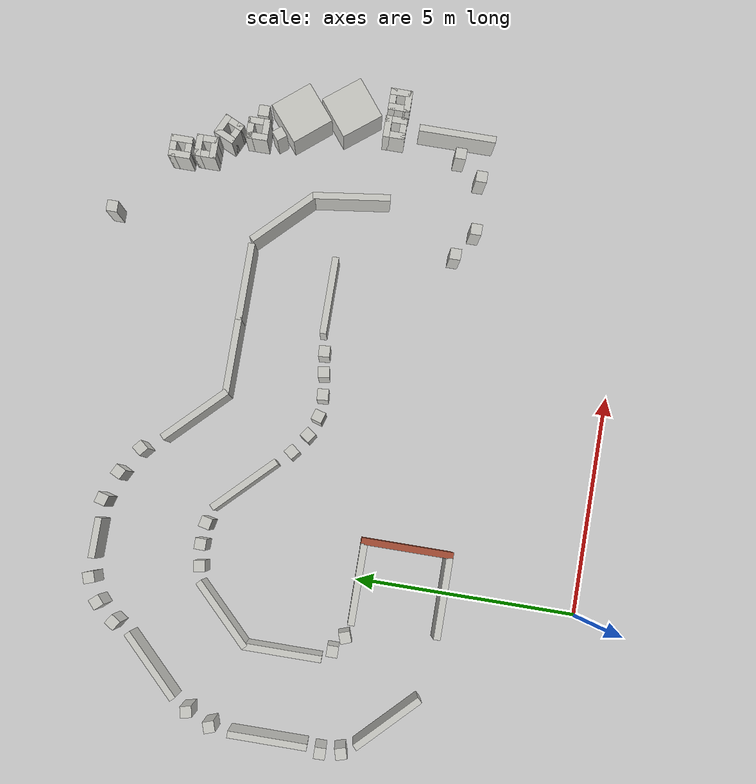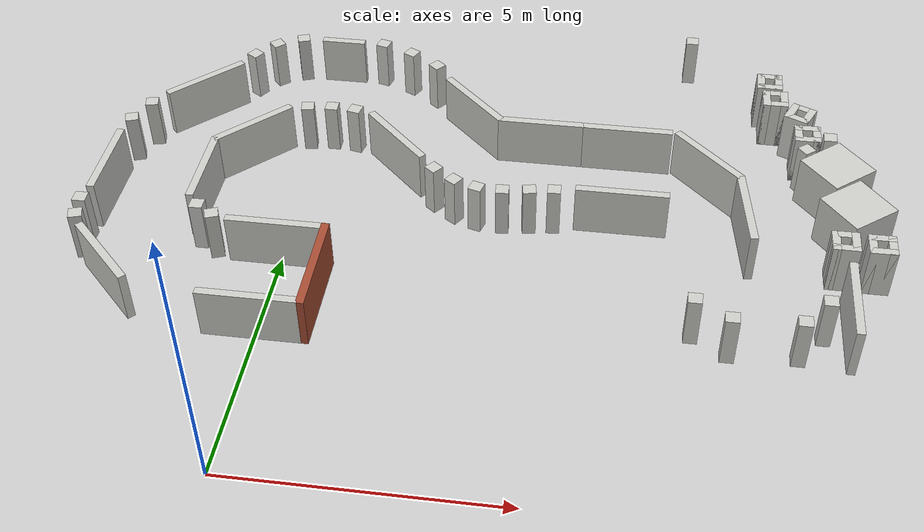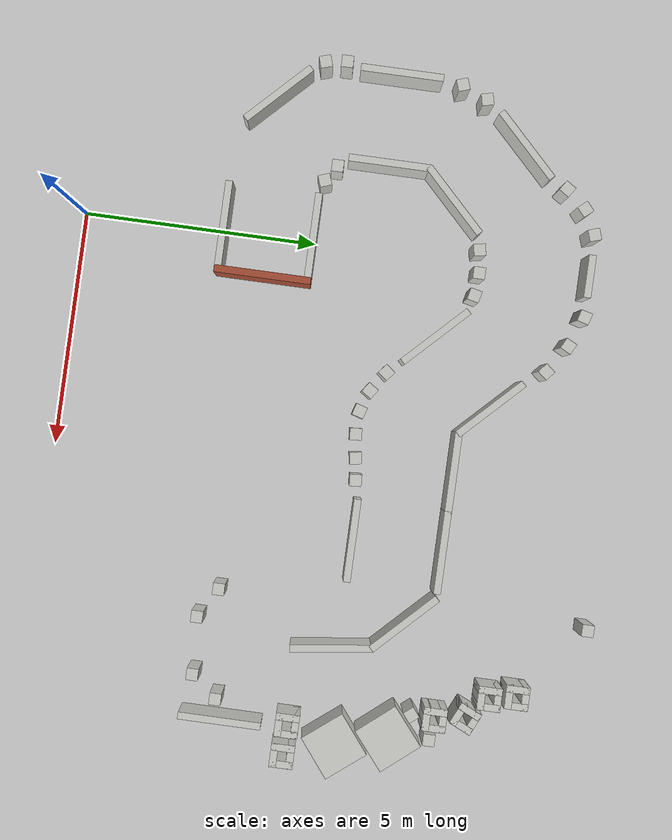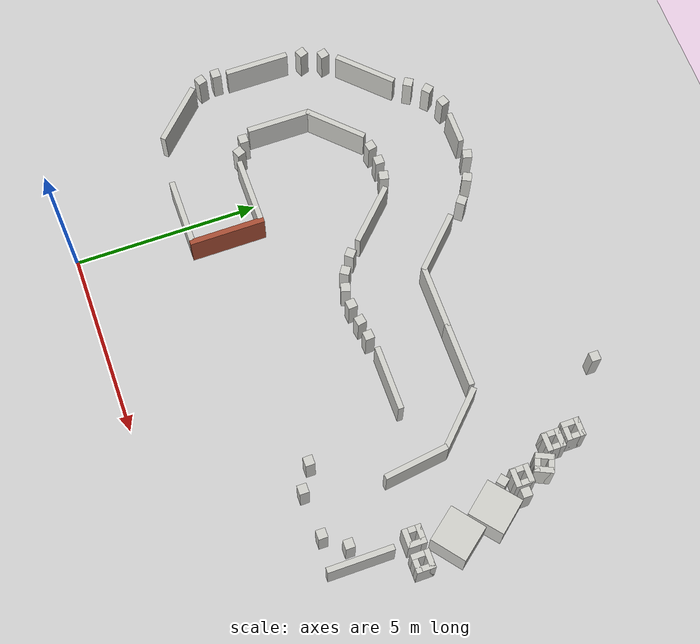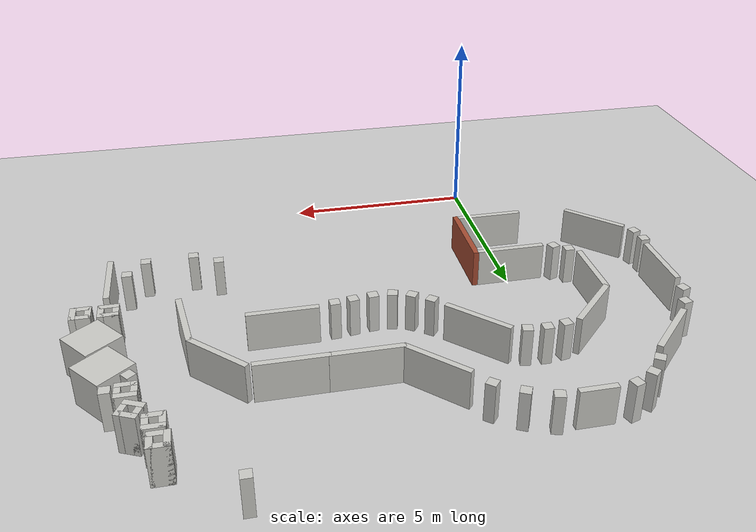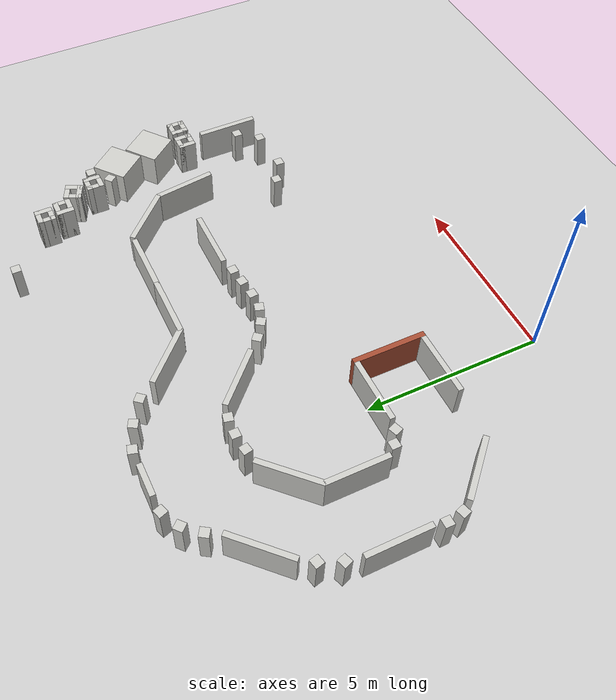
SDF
<sdf version="1.6">
 <world name="default">
  <model name="ground_plane">
   <static>1</static>
   <link name="link">
    <collision name="collision">
     <geometry><plane><normal>0 0 1</normal><size>100 100</size></plane></geometry>
     <surface><friction><ode><mu>100</mu><mu2>50</mu2></ode></friction></surface>
    </collision>
    <visual name="visual">
     <cast_shadows>0</cast_shadows>
     <geometry><plane><normal>0 0 1</normal><size>100 100</size></plane></geometry>
     <material>
      <script><uri>file://media/materials/scripts/concrete.material</uri><name>Concrete/1</name></script>
     </material>
    </visual>
   </link>
  </model>
  <model name="track_straight_0">
   <static>1</static>
   <pose>6.1613 7.57532 0 0 -0 1.5708</pose>
   <link name="Wall_1">
    <collision name="Wall_1_Collision">
     <geometry><box><size>1.75 0.15 1</size></box></geometry>
     <pose>0 0 0.5 0 -0 0</pose>
    </collision>
    <visual name="Wall_1_Visual">
     <pose>0 0 0.5 0 -0 0</pose>
     <geometry><box><size>1.75 0.15 1</size></box></geometry>
     <material>
      <script><uri>file://media/materials/scripts/gazebo.material</uri><name>Gazebo/CeilingTiled</name></script>
      <ambient>1 0.764706 0.305882 1</ambient>
     </material>
    </visual>
    <pose>-0.955 0.002 0 0 0 -1.5708</pose>
   </link>
   <link name="Wall_2">
    <collision name="Wall_2_Collision">
     <geometry><box><size>1.75 0.15 1</size></box></geometry>
     <pose>0 0 0.5 0 -0 0</pose>
    </collision>
    <visual name="Wall_2_Visual">
     <pose>0 0 0.5 0 -0 0</pose>
     <geometry><box><size>1.75 0.15 1</size></box></geometry>
     <material>
      <script><uri>file://media/materials/scripts/gazebo.material</uri><name>Gazebo/CeilingTiled</name></script>
      <ambient>1 0.764706 0.305882 1</ambient>
     </material>
    </visual>
    <pose>0.955 0.002 0 0 0 -1.5708</pose>
   </link>
  </model>
  <model name="track_straight_0_clone_0">
   <static>1</static>
   <pose>-1.86828 8.45595 0 0 -0 2.3562</pose>
   <link name="Wall_1">
    <collision name="Wall_1_Collision">
     <geometry><box><size>1.75 0.15 1</size></box></geometry>
     <pose>0 0 0.5 0 -0 0</pose>
    </collision>
    <visual name="Wall_1_Visual">
     <pose>0 0 0.5 0 -0 0</pose>
     <geometry><box><size>1.75 0.15 1</size></box></geometry>
     <material>
      <script><uri>file://media/materials/scripts/gazebo.material</uri><name>Gazebo/CeilingTiled</name></script>
      <ambient>1 0.764706 0.305882 1</ambient>
     </material>
    </visual>
    <pose>-0.955 0.002 0 0 0 -1.5708</pose>
   </link>
   <link name="Wall_2">
    <collision name="Wall_2_Collision">
     <geometry><box><size>1.75 0.15 1</size></box></geometry>
     <pose>0 0 0.5 0 -0 0</pose>
    </collision>
    <visual name="Wall_2_Visual">
     <pose>0 0 0.5 0 -0 0</pose>
     <geometry><box><size>1.75 0.15 1</size></box></geometry>
     <material>
      <script><uri>file://media/materials/scripts/gazebo.material</uri><name>Gazebo/CeilingTiled</name></script>
      <ambient>1 0.764706 0.305882 1</ambient>
     </material>
    </visual>
    <pose>0.955 0.002 0 0 0 -1.5708</pose>
   </link>
  </model>
  <model name="track_straight_0_clone_1">
   <static>1</static>
   <pose>-2.74466 6.33811 0 0 -0 0</pose>
   <link name="Wall_1">
    <collision name="Wall_1_Collision">
     <geometry><box><size>1.75 0.15 1</size></box></geometry>
     <pose>0 0 0.5 0 -0 0</pose>
    </collision>
    <visual name="Wall_1_Visual">
     <pose>0 0 0.5 0 -0 0</pose>
     <geometry><box><size>1.75 0.15 1</size></box></geometry>
     <material>
      <script><uri>file://media/materials/scripts/gazebo.material</uri><name>Gazebo/CeilingTiled</name></script>
      <ambient>1 0.764706 0.305882 1</ambient>
     </material>
    </visual>
    <pose>-0.955 0.002 0 0 0 -1.5708</pose>
   </link>
   <link name="Wall_2">
    <collision name="Wall_2_Collision">
     <geometry><box><size>1.75 0.15 1</size></box></geometry>
     <pose>0 0 0.5 0 -0 0</pose>
    </collision>
    <visual name="Wall_2_Visual">
     <pose>0 0 0.5 0 -0 0</pose>
     <geometry><box><size>1.75 0.15 1</size></box></geometry>
     <material>
      <script><uri>file://media/materials/scripts/gazebo.material</uri><name>Gazebo/CeilingTiled</name></script>
      <ambient>1 0.764706 0.305882 1</ambient>
     </material>
    </visual>
    <pose>0.955 0.002 0 0 0 -1.5708</pose>
   </link>
  </model>
  <model name="track_straight_0_clone_2">
   <static>1</static>
   <pose>2.36127 8.45219 0 0 -0 0.785402</pose>
   <link name="Wall_1">
    <collision name="Wall_1_Collision">
     <geometry><box><size>1.75 0.15 1</size></box></geometry>
     <pose>0 0 0.5 0 -0 0</pose>
    </collision>
    <visual name="Wall_1_Visual">
     <pose>0 0 0.5 0 -0 0</pose>
     <geometry><box><size>1.75 0.15 1</size></box></geometry>
     <material>
      <script><uri>file://media/materials/scripts/gazebo.material</uri><name>Gazebo/CeilingTiled</name></script>
      <ambient>1 0.764706 0.305882 1</ambient>
     </material>
    </visual>
    <pose>-0.955 0.002 0 0 0 -1.5708</pose>
   </link>
   <link name="Wall_2">
    <collision name="Wall_2_Collision">
     <geometry><box><size>1.75 0.15 1</size></box></geometry>
     <pose>0 0 0.5 0 -0 0</pose>
    </collision>
    <visual name="Wall_2_Visual">
     <pose>0 0 0.5 0 -0 0</pose>
     <geometry><box><size>1.75 0.15 1</size></box></geometry>
     <material>
      <script><uri>file://media/materials/scripts/gazebo.material</uri><name>Gazebo/CeilingTiled</name></script>
      <ambient>1 0.764706 0.305882 1</ambient>
     </material>
    </visual>
    <pose>0.955 0.002 0 0 0 -1.5708</pose>
   </link>
  </model>
  <model name="obstacle_wall_short_9">
   <static>1</static>
   <pose>0 10.81 0 0 -0 0</pose>
   <link name="Wall">
    <collision name="Wall_Collision">
     <geometry><box><size>0.9 0.15 1</size></box></geometry>
     <pose>0 0 0.5 0 -0 0</pose>
    </collision>
    <visual name="Wall_Visual">
     <pose>0 0 0.5 0 -0 0</pose>
     <geometry><box><size>0.9 0.15 1</size></box></geometry>
     <material>
      <script><uri>file://media/materials/scripts/gazebo.material</uri><name>Gazebo/CeilingTiled</name></script>
      <ambient>1 0.764706 0.305882 1</ambient>
     </material>
    </visual>
   </link>
  </model>
  <model name="obstacle_squarepillar_small">
   <static>1</static>
   <pose>2.10974 10.1788 0 0 -0 0.872076</pose>
   <link name="Pillar">
    <collision name="Pillar_Collision">
     <geometry><box><size>0.25 0.25 1</size></box></geometry>
     <pose>0 0 0.5 0 -0 0</pose>
    </collision>
    <visual name="Pillar_Visual">
     <pose>0 0 0.5 0 -0 0</pose>
     <geometry><box><size>0.25 0.25 1</size></box></geometry>
     <material>
      <script><uri>file://media/materials/scripts/gazebo.material</uri><name>Gazebo/CeilingTiled</name></script>
      <ambient>1 0.764706 0.305882 1</ambient>
     </material>
    </visual>
   </link>
  </model>
  <model name="obstacle_squarepillar_small_clone">
   <static>1</static>
   <pose>1.5116 10.5659 0 0 0 -0.470925</pose>
   <link name="Pillar">
    <collision name="Pillar_Collision">
     <geometry><box><size>0.25 0.25 1</size></box></geometry>
     <pose>0 0 0.5 0 -0 0</pose>
    </collision>
    <visual name="Pillar_Visual">
     <pose>0 0 0.5 0 -0 0</pose>
     <geometry><box><size>0.25 0.25 1</size></box></geometry>
     <material>
      <script><uri>file://media/materials/scripts/gazebo.material</uri><name>Gazebo/CeilingTiled</name></script>
      <ambient>1 0.764706 0.305882 1</ambient>
     </material>
    </visual>
   </link>
  </model>
  <model name="obstacle_squarepillar_small_clone_0">
   <static>1</static>
   <pose>0.86381 10.8205 0 0 0 -0.269082</pose>
   <link name="Pillar">
    <collision name="Pillar_Collision">
     <geometry><box><size>0.25 0.25 1</size></box></geometry>
     <pose>0 0 0.5 0 -0 0</pose>
    </collision>
    <visual name="Pillar_Visual">
     <pose>0 0 0.5 0 -0 0</pose>
     <geometry><box><size>0.25 0.25 1</size></box></geometry>
     <material>
      <script><uri>file://media/materials/scripts/gazebo.material</uri><name>Gazebo/CeilingTiled</name></script>
      <ambient>1 0.764706 0.305882 1</ambient>
     </material>
    </visual>
   </link>
  </model>
  <model name="obstacle_squarepillar_small_clone_1">
   <static>1</static>
   <pose>-1.74834 10.1009 0 0 0 -0.568659</pose>
   <link name="Pillar">
    <collision name="Pillar_Collision">
     <geometry><box><size>0.25 0.25 1</size></box></geometry>
     <pose>0 0 0.5 0 -0 0</pose>
    </collision>
    <visual name="Pillar_Visual">
     <pose>0 0 0.5 0 -0 0</pose>
     <geometry><box><size>0.25 0.25 1</size></box></geometry>
     <material>
      <script><uri>file://media/materials/scripts/gazebo.material</uri><name>Gazebo/CeilingTiled</name></script>
      <ambient>1 0.764706 0.305882 1</ambient>
     </material>
    </visual>
   </link>
  </model>
  <model name="obstacle_squarepillar_small_clone_2">
   <static>1</static>
   <pose>-1.37986 10.5313 0 0 -0 0.724923</pose>
   <link name="Pillar">
    <collision name="Pillar_Collision">
     <geometry><box><size>0.25 0.25 1</size></box></geometry>
     <pose>0 0 0.5 0 -0 0</pose>
    </collision>
    <visual name="Pillar_Visual">
     <pose>0 0 0.5 0 -0 0</pose>
     <geometry><box><size>0.25 0.25 1</size></box></geometry>
     <material>
      <script><uri>file://media/materials/scripts/gazebo.material</uri><name>Gazebo/CeilingTiled</name></script>
      <ambient>1 0.764706 0.305882 1</ambient>
     </material>
    </visual>
   </link>
  </model>
  <model name="obstacle_squarepillar_small_clone_3">
   <static>1</static>
   <pose>-0.873681 10.7903 0 0 -0 0.325172</pose>
   <link name="Pillar">
    <collision name="Pillar_Collision">
     <geometry><box><size>0.25 0.25 1</size></box></geometry>
     <pose>0 0 0.5 0 -0 0</pose>
    </collision>
    <visual name="Pillar_Visual">
     <pose>0 0 0.5 0 -0 0</pose>
     <geometry><box><size>0.25 0.25 1</size></box></geometry>
     <material>
      <script><uri>file://media/materials/scripts/gazebo.material</uri><name>Gazebo/CeilingTiled</name></script>
      <ambient>1 0.764706 0.305882 1</ambient>
     </material>
    </visual>
   </link>
  </model>
  <model name="track_end_0">
   <static>1</static>
   <pose>1e-06 4 0 0 0 -1.57079</pose>
   <link name="Wall_1">
    <collision name="Wall_1_Collision">
     <geometry><box><size>1.8 0.15 1</size></box></geometry>
     <pose>0 0 0.5 0 -0 0</pose>
    </collision>
    <visual name="Wall_1_Visual">
     <pose>0 0 0.5 0 -0 0</pose>
     <geometry><box><size>1.8 0.15 1</size></box></geometry>
     <material>
      <script><uri>file://media/materials/scripts/gazebo.material</uri><name>Gazebo/CeilingTiled</name></script>
      <ambient>1 0.764706 0.305882 1</ambient>
     </material>
    </visual>
    <pose>-0.95 -0.065 0 0 0 -1.5708</pose>
   </link>
   <link name="Wall_2">
    <collision name="Wall_2_Collision">
     <geometry><box><size>1.8 0.15 1</size></box></geometry>
     <pose>0 0 0.5 0 -0 0</pose>
    </collision>
    <visual name="Wall_2_Visual">
     <pose>0 0 0.5 0 -0 0</pose>
     <geometry><box><size>1.8 0.15 1</size></box></geometry>
     <material>
      <script><uri>file://media/materials/scripts/gazebo.material</uri><name>Gazebo/CeilingTiled</name></script>
      <ambient>1 0.764706 0.305882 1</ambient>
     </material>
    </visual>
    <pose>0.95 -0.065 0 0 0 -1.5708</pose>
   </link>
   <link name="Wall_3">
    <collision name="Wall_3_Collision">
     <geometry><box><size>2.05 0.15 1.5</size></box></geometry>
     <pose>0 0 0.75 0 -0 0</pose>
    </collision>
    <visual name="Wall_3_Visual">
     <pose>0 0 0.5 0 -0 0</pose>
     <geometry><box><size>2.05 0.15 1</size></box></geometry>
     <material>
      <script><uri>file://media/materials/scripts/gazebo.material</uri><name>Gazebo/Bricks</name></script>
      <ambient>0.996078 0.47451 0.0196078 1</ambient>
     </material>
    </visual>
    <pose>0 0.89 0 0 -0 0</pose>
   </link>
  </model>
  <model name="obstacle_squarepillar_small_0">
   <static>1</static>
   <pose>0.721248 8.46998 0 0 0 -0.217104</pose>
   <link name="Pillar">
    <collision name="Pillar_Collision">
     <geometry><box><size>0.25 0.25 1</size></box></geometry>
     <pose>0 0 0.5 0 -0 0</pose>
    </collision>
    <visual name="Pillar_Visual">
     <pose>0 0 0.5 0 -0 0</pose>
     <geometry><box><size>0.25 0.25 1</size></box></geometry>
     <material>
      <script><uri>file://media/materials/scripts/gazebo.material</uri><name>Gazebo/CeilingTiled</name></script>
      <ambient>1 0.764706 0.305882 1</ambient>
     </material>
    </visual>
   </link>
  </model>
  <model name="obstacle_squarepillar_small_0_clone">
   <static>1</static>
   <pose>0.243136 8.5027 0 0 -0 0</pose>
   <link name="Pillar">
    <collision name="Pillar_Collision">
     <geometry><box><size>0.25 0.25 1</size></box></geometry>
     <pose>0 0 0.5 0 -0 0</pose>
    </collision>
    <visual name="Pillar_Visual">
     <pose>0 0 0.5 0 -0 0</pose>
     <geometry><box><size>0.25 0.25 1</size></box></geometry>
     <material>
      <script><uri>file://media/materials/scripts/gazebo.material</uri><name>Gazebo/CeilingTiled</name></script>
      <ambient>1 0.764706 0.305882 1</ambient>
     </material>
    </visual>
   </link>
  </model>
  <model name="obstacle_squarepillar_small_0_clone_0">
   <static>1</static>
   <pose>-0.239063 8.44456 0 0 -0 0.176148</pose>
   <link name="Pillar">
    <collision name="Pillar_Collision">
     <geometry><box><size>0.25 0.25 1</size></box></geometry>
     <pose>0 0 0.5 0 -0 0</pose>
    </collision>
    <visual name="Pillar_Visual">
     <pose>0 0 0.5 0 -0 0</pose>
     <geometry><box><size>0.25 0.25 1</size></box></geometry>
     <material>
      <script><uri>file://media/materials/scripts/gazebo.material</uri><name>Gazebo/CeilingTiled</name></script>
      <ambient>1 0.764706 0.305882 1</ambient>
     </material>
    </visual>
   </link>
  </model>
  <model name="obstacle_wall_full_12">
   <static>1</static>
   <pose>4.47315 8.53175 0 0 -0 0</pose>
   <link name="Wall">
    <collision name="Wall_Collision">
     <geometry><box><size>1.75 0.15 1</size></box></geometry>
     <pose>0 0 0.5 0 -0 0</pose>
    </collision>
    <visual name="Wall_Visual">
     <pose>0 0 0.5 0 -0 0</pose>
     <geometry><box><size>1.75 0.15 1</size></box></geometry>
     <material>
      <script><uri>file://media/materials/scripts/gazebo.material</uri><name>Gazebo/CeilingTiled</name></script>
      <ambient>1 0.764706 0.305882 1</ambient>
     </material>
    </visual>
   </link>
  </model>
  <model name="obstacle_squarepillar_small_clone_clone">
   <static>1</static>
   <pose>2.57143 6.86113 0 0 0 -0.684605</pose>
   <link name="Pillar">
    <collision name="Pillar_Collision">
     <geometry><box><size>0.25 0.25 1</size></box></geometry>
     <pose>0 0 0.5 0 -0 0</pose>
    </collision>
    <visual name="Pillar_Visual">
     <pose>0 0 0.5 0 -0 0</pose>
     <geometry><box><size>0.25 0.25 1</size></box></geometry>
     <material>
      <script><uri>file://media/materials/scripts/gazebo.material</uri><name>Gazebo/CeilingTiled</name></script>
      <ambient>1 0.764706 0.305882 1</ambient>
     </material>
    </visual>
   </link>
  </model>
  <model name="obstacle_squarepillar_small_clone_clone_0">
   <static>1</static>
   <pose>3.44889 6.41137 0 0 0 -0.285464</pose>
   <link name="Pillar">
    <collision name="Pillar_Collision">
     <geometry><box><size>0.25 0.25 1</size></box></geometry>
     <pose>0 0 0.5 0 -0 0</pose>
    </collision>
    <visual name="Pillar_Visual">
     <pose>0 0 0.5 0 -0 0</pose>
     <geometry><box><size>0.25 0.25 1</size></box></geometry>
     <material>
      <script><uri>file://media/materials/scripts/gazebo.material</uri><name>Gazebo/CeilingTiled</name></script>
      <ambient>1 0.764706 0.305882 1</ambient>
     </material>
    </visual>
   </link>
  </model>
  <model name="obstacle_squarepillar_small_clone_clone_1">
   <static>1</static>
   <pose>3.93736 6.39441 0 0 -0 0.076355</pose>
   <link name="Pillar">
    <collision name="Pillar_Collision">
     <geometry><box><size>0.25 0.25 1</size></box></geometry>
     <pose>0 0 0.5 0 -0 0</pose>
    </collision>
    <visual name="Pillar_Visual">
     <pose>0 0 0.5 0 -0 0</pose>
     <geometry><box><size>0.25 0.25 1</size></box></geometry>
     <material>
      <script><uri>file://media/materials/scripts/gazebo.material</uri><name>Gazebo/CeilingTiled</name></script>
      <ambient>1 0.764706 0.305882 1</ambient>
     </material>
    </visual>
   </link>
  </model>
  <model name="obstacle_squarepillar_small_clone_clone_2">
   <static>1</static>
   <pose>4.43734 6.45886 0 0 -0 0.165824</pose>
   <link name="Pillar">
    <collision name="Pillar_Collision">
     <geometry><box><size>0.25 0.25 1</size></box></geometry>
     <pose>0 0 0.5 0 -0 0</pose>
    </collision>
    <visual name="Pillar_Visual">
     <pose>0 0 0.5 0 -0 0</pose>
     <geometry><box><size>0.25 0.25 1</size></box></geometry>
     <material>
      <script><uri>file://media/materials/scripts/gazebo.material</uri><name>Gazebo/CeilingTiled</name></script>
      <ambient>1 0.764706 0.305882 1</ambient>
     </material>
    </visual>
   </link>
  </model>
  <model name="obstacle_squarepillar_small_clone_clone_3">
   <static>1</static>
   <pose>4.8963 6.52073 0 0 -0 0.05947</pose>
   <link name="Pillar">
    <collision name="Pillar_Collision">
     <geometry><box><size>0.25 0.25 1</size></box></geometry>
     <pose>0 0 0.5 0 -0 0</pose>
    </collision>
    <visual name="Pillar_Visual">
     <pose>0 0 0.5 0 -0 0</pose>
     <geometry><box><size>0.25 0.25 1</size></box></geometry>
     <material>
      <script><uri>file://media/materials/scripts/gazebo.material</uri><name>Gazebo/CeilingTiled</name></script>
      <ambient>1 0.764706 0.305882 1</ambient>
     </material>
    </visual>
   </link>
  </model>
  <model name="obstacle_squarepillar_small_clone_clone_clone">
   <static>1</static>
   <pose>2.99592 6.56936 0 0 0 -0.591701</pose>
   <link name="Pillar">
    <collision name="Pillar_Collision">
     <geometry><box><size>0.25 0.25 1</size></box></geometry>
     <pose>0 0 0.5 0 -0 0</pose>
    </collision>
    <visual name="Pillar_Visual">
     <pose>0 0 0.5 0 -0 0</pose>
     <geometry><box><size>0.25 0.25 1</size></box></geometry>
     <material>
      <script><uri>file://media/materials/scripts/gazebo.material</uri><name>Gazebo/CeilingTiled</name></script>
      <ambient>1 0.764706 0.305882 1</ambient>
     </material>
    </visual>
   </link>
  </model>
  <model name="obstacle_wall_full_13">
   <static>1</static>
   <pose>-2.91947 3.82486 0 0 0 -0.785398</pose>
   <link name="Wall">
    <collision name="Wall_Collision">
     <geometry><box><size>1.75 0.15 1</size></box></geometry>
     <pose>0 0 0.5 0 -0 0</pose>
    </collision>
    <visual name="Wall_Visual">
     <pose>0 0 0.5 0 -0 0</pose>
     <geometry><box><size>1.75 0.15 1</size></box></geometry>
     <material>
      <script><uri>file://media/materials/scripts/gazebo.material</uri><name>Gazebo/CeilingTiled</name></script>
      <ambient>1 0.764706 0.305882 1</ambient>
     </material>
    </visual>
   </link>
  </model>
  <model name="obstacle_squarepillar_small_1">
   <static>1</static>
   <pose>-3.38097 8.18271 0 0 -0 0.229313</pose>
   <link name="Pillar">
    <collision name="Pillar_Collision">
     <geometry><box><size>0.25 0.25 1</size></box></geometry>
     <pose>0 0 0.5 0 -0 0</pose>
    </collision>
    <visual name="Pillar_Visual">
     <pose>0 0 0.5 0 -0 0</pose>
     <geometry><box><size>0.25 0.25 1</size></box></geometry>
     <material>
      <script><uri>file://media/materials/scripts/gazebo.material</uri><name>Gazebo/CeilingTiled</name></script>
      <ambient>1 0.764706 0.305882 1</ambient>
     </material>
    </visual>
   </link>
  </model>
  <model name="obstacle_squarepillar_small_2">
   <static>1</static>
   <pose>-3.61797 7.63458 0 0 -0 0.330499</pose>
   <link name="Pillar">
    <collision name="Pillar_Collision">
     <geometry><box><size>0.25 0.25 1</size></box></geometry>
     <pose>0 0 0.5 0 -0 0</pose>
    </collision>
    <visual name="Pillar_Visual">
     <pose>0 0 0.5 0 -0 0</pose>
     <geometry><box><size>0.25 0.25 1</size></box></geometry>
     <material>
      <script><uri>file://media/materials/scripts/gazebo.material</uri><name>Gazebo/CeilingTiled</name></script>
      <ambient>1 0.764706 0.305882 1</ambient>
     </material>
    </visual>
   </link>
  </model>
  <model name="obstacle_squarepillar_small_3">
   <static>1</static>
   <pose>-1.58274 5.2587 0 0 -0 0.00476</pose>
   <link name="Pillar">
    <collision name="Pillar_Collision">
     <geometry><box><size>0.25 0.25 1</size></box></geometry>
     <pose>0 0 0.5 0 -0 0</pose>
    </collision>
    <visual name="Pillar_Visual">
     <pose>0 0 0.5 0 -0 0</pose>
     <geometry><box><size>0.25 0.25 1</size></box></geometry>
     <material>
      <script><uri>file://media/materials/scripts/gazebo.material</uri><name>Gazebo/CeilingTiled</name></script>
      <ambient>1 0.764706 0.305882 1</ambient>
     </material>
    </visual>
   </link>
  </model>
  <model name="obstacle_squarepillar_small_3_clone">
   <static>1</static>
   <pose>-1.24316 5.03462 0 0 -0 0.352987</pose>
   <link name="Pillar">
    <collision name="Pillar_Collision">
     <geometry><box><size>0.25 0.25 1</size></box></geometry>
     <pose>0 0 0.5 0 -0 0</pose>
    </collision>
    <visual name="Pillar_Visual">
     <pose>0 0 0.5 0 -0 0</pose>
     <geometry><box><size>0.25 0.25 1</size></box></geometry>
     <material>
      <script><uri>file://media/materials/scripts/gazebo.material</uri><name>Gazebo/CeilingTiled</name></script>
      <ambient>1 0.764706 0.305882 1</ambient>
     </material>
    </visual>
   </link>
  </model>
  <model name="obstacle_squarepillar_small_3_clone_0">
   <static>1</static>
   <pose>-3.77586 5.16899 0 0 -0 0.012581</pose>
   <link name="Pillar">
    <collision name="Pillar_Collision">
     <geometry><box><size>0.25 0.25 1</size></box></geometry>
     <pose>0 0 0.5 0 -0 0</pose>
    </collision>
    <visual name="Pillar_Visual">
     <pose>0 0 0.5 0 -0 0</pose>
     <geometry><box><size>0.25 0.25 1</size></box></geometry>
     <material>
      <script><uri>file://media/materials/scripts/gazebo.material</uri><name>Gazebo/CeilingTiled</name></script>
      <ambient>1 0.764706 0.305882 1</ambient>
     </material>
    </visual>
   </link>
  </model>
  <model name="obstacle_squarepillar_small_3_clone_0_clone">
   <static>1</static>
   <pose>-3.71121 4.71784 0 0 -0 0.293612</pose>
   <link name="Pillar">
    <collision name="Pillar_Collision">
     <geometry><box><size>0.25 0.25 1</size></box></geometry>
     <pose>0 0 0.5 0 -0 0</pose>
    </collision>
    <visual name="Pillar_Visual">
     <pose>0 0 0.5 0 -0 0</pose>
     <geometry><box><size>0.25 0.25 1</size></box></geometry>
     <material>
      <script><uri>file://media/materials/scripts/gazebo.material</uri><name>Gazebo/CeilingTiled</name></script>
      <ambient>1 0.764706 0.305882 1</ambient>
     </material>
    </visual>
   </link>
  </model>
  <model name="obstacle_squarepillar_medium">
   <static>1</static>
   <pose>10.1912 5.78366 0 0 -0 0</pose>
   <link name="Wall_1">
    <collision name="Wall_1_Collision">
     <geometry><box><size>0.5 0.15 1</size></box></geometry>
     <pose>0 0 0.5 0 -0 0</pose>
    </collision>
    <visual name="Wall_1_Visual">
     <pose>0 0 0.5 0 -0 0</pose>
     <geometry><box><size>0.5 0.15 1</size></box></geometry>
     <material>
      <script><uri>file://media/materials/scripts/gazebo.material</uri><name>Gazebo/CeilingTiled</name></script>
      <ambient>1 0.764706 0.305882 1</ambient>
     </material>
    </visual>
    <pose>-0.175 0 0 0 0 -1.5708</pose>
   </link>
   <link name="Wall_2">
    <collision name="Wall_2_Collision">
     <geometry><box><size>0.5 0.15 1</size></box></geometry>
     <pose>0 0 0.5 0 -0 0</pose>
    </collision>
    <visual name="Wall_2_Visual">
     <pose>0 0 0.5 0 -0 0</pose>
     <geometry><box><size>0.5 0.15 1</size></box></geometry>
     <material>
      <script><uri>file://media/materials/scripts/gazebo.material</uri><name>Gazebo/CeilingTiled</name></script>
      <ambient>1 0.764706 0.305882 1</ambient>
     </material>
    </visual>
    <pose>0 -0.175 0 0 -0 0</pose>
   </link>
   <link name="Wall_3">
    <collision name="Wall_3_Collision">
     <geometry><box><size>0.5 0.15 1</size></box></geometry>
     <pose>0 0 0.5 0 -0 0</pose>
    </collision>
    <visual name="Wall_3_Visual">
     <pose>0 0 0.5 0 -0 0</pose>
     <geometry><box><size>0.5 0.15 1</size></box></geometry>
     <material>
      <script><uri>file://media/materials/scripts/gazebo.material</uri><name>Gazebo/CeilingTiled</name></script>
      <ambient>1 0.764706 0.305882 1</ambient>
     </material>
    </visual>
    <pose>0.175 0 0 0 -0 1.5708</pose>
   </link>
   <link name="Wall_4">
    <collision name="Wall_4_Collision">
     <geometry><box><size>0.5 0.15 1</size></box></geometry>
     <pose>0 0 0.5 0 -0 0</pose>
    </collision>
    <visual name="Wall_4_Visual">
     <pose>0 0 0.5 0 -0 0</pose>
     <geometry><box><size>0.5 0.15 1</size></box></geometry>
     <material>
      <script><uri>file://media/materials/scripts/gazebo.material</uri><name>Gazebo/CeilingTiled</name></script>
      <ambient>1 0.764706 0.305882 1</ambient>
     </material>
    </visual>
    <pose>0 0.175 0 0 -0 3.14159</pose>
   </link>
  </model>
  <model name="obstacle_squarepillar_medium_clone">
   <static>1</static>
   <pose>10.8321 5.76941 0 0 -0 0</pose>
   <link name="Wall_1">
    <collision name="Wall_1_Collision">
     <geometry><box><size>0.5 0.15 1</size></box></geometry>
     <pose>0 0 0.5 0 -0 0</pose>
    </collision>
    <visual name="Wall_1_Visual">
     <pose>0 0 0.5 0 -0 0</pose>
     <geometry><box><size>0.5 0.15 1</size></box></geometry>
     <material>
      <script><uri>file://media/materials/scripts/gazebo.material</uri><name>Gazebo/CeilingTiled</name></script>
      <ambient>1 0.764706 0.305882 1</ambient>
     </material>
    </visual>
    <pose>-0.175 0 0 0 0 -1.5708</pose>
   </link>
   <link name="Wall_2">
    <collision name="Wall_2_Collision">
     <geometry><box><size>0.5 0.15 1</size></box></geometry>
     <pose>0 0 0.5 0 -0 0</pose>
    </collision>
    <visual name="Wall_2_Visual">
     <pose>0 0 0.5 0 -0 0</pose>
     <geometry><box><size>0.5 0.15 1</size></box></geometry>
     <material>
      <script><uri>file://media/materials/scripts/gazebo.material</uri><name>Gazebo/CeilingTiled</name></script>
      <ambient>1 0.764706 0.305882 1</ambient>
     </material>
    </visual>
    <pose>0 -0.175 0 0 -0 0</pose>
   </link>
   <link name="Wall_3">
    <collision name="Wall_3_Collision">
     <geometry><box><size>0.5 0.15 1</size></box></geometry>
     <pose>0 0 0.5 0 -0 0</pose>
    </collision>
    <visual name="Wall_3_Visual">
     <pose>0 0 0.5 0 -0 0</pose>
     <geometry><box><size>0.5 0.15 1</size></box></geometry>
     <material>
      <script><uri>file://media/materials/scripts/gazebo.material</uri><name>Gazebo/CeilingTiled</name></script>
      <ambient>1 0.764706 0.305882 1</ambient>
     </material>
    </visual>
    <pose>0.175 0 0 0 -0 1.5708</pose>
   </link>
   <link name="Wall_4">
    <collision name="Wall_4_Collision">
     <geometry><box><size>0.5 0.15 1</size></box></geometry>
     <pose>0 0 0.5 0 -0 0</pose>
    </collision>
    <visual name="Wall_4_Visual">
     <pose>0 0 0.5 0 -0 0</pose>
     <geometry><box><size>0.5 0.15 1</size></box></geometry>
     <material>
      <script><uri>file://media/materials/scripts/gazebo.material</uri><name>Gazebo/CeilingTiled</name></script>
      <ambient>1 0.764706 0.305882 1</ambient>
     </material>
    </visual>
    <pose>0 0.175 0 0 -0 3.14159</pose>
   </link>
  </model>
  <model name="obstacle_wall_full_14">
   <static>1</static>
   <pose>10.2758 4.36421 0 0 -0 1.5708</pose>
   <link name="Wall">
    <collision name="Wall_Collision">
     <geometry><box><size>1.75 0.15 1</size></box></geometry>
     <pose>0 0 0.5 0 -0 0</pose>
    </collision>
    <visual name="Wall_Visual">
     <pose>0 0 0.5 0 -0 0</pose>
     <geometry><box><size>1.75 0.15 1</size></box></geometry>
     <material>
      <script><uri>file://media/materials/scripts/gazebo.material</uri><name>Gazebo/CeilingTiled</name></script>
      <ambient>1 0.764706 0.305882 1</ambient>
     </material>
    </visual>
   </link>
  </model>
  <model name="obstacle_wall_full_15">
   <static>1</static>
   <pose>7.74257 7.9371 0 0 0 -0.785398</pose>
   <link name="Wall">
    <collision name="Wall_Collision">
     <geometry><box><size>1.75 0.15 1</size></box></geometry>
     <pose>0 0 0.5 0 -0 0</pose>
    </collision>
    <visual name="Wall_Visual">
     <pose>0 0 0.5 0 -0 0</pose>
     <geometry><box><size>1.75 0.15 1</size></box></geometry>
     <material>
      <script><uri>file://media/materials/scripts/gazebo.material</uri><name>Gazebo/CeilingTiled</name></script>
      <ambient>1 0.764706 0.305882 1</ambient>
     </material>
    </visual>
   </link>
  </model>
  <model name="obstacle_wall_full_16">
   <static>1</static>
   <pose>8.45448 6.49342 0 0 -0 1.70253</pose>
   <link name="Wall">
    <collision name="Wall_Collision">
     <geometry><box><size>1.75 0.15 1</size></box></geometry>
     <pose>0 0 0.5 0 -0 0</pose>
    </collision>
    <visual name="Wall_Visual">
     <pose>0 0 0.5 0 -0 0</pose>
     <geometry><box><size>1.75 0.15 1</size></box></geometry>
     <material>
      <script><uri>file://media/materials/scripts/gazebo.material</uri><name>Gazebo/CeilingTiled</name></script>
      <ambient>1 0.764706 0.305882 1</ambient>
     </material>
    </visual>
   </link>
  </model>
  <model name="obstacle_squarepillar_large_clone_0">
   <pose>10.4825 6.82088 0 0 0 -0.90209</pose>
   <link name="Pillar">
    <collision name="Pillar_Collision">
     <geometry><box><size>1 1 1</size></box></geometry>
     <pose>0 0 0.5 0 -0 0</pose>
    </collision>
    <visual name="Pillar_Visual">
     <pose>0 0 0.5 0 -0 0</pose>
     <geometry><box><size>1 1 1</size></box></geometry>
     <material>
      <script><uri>file://media/materials/scripts/gazebo.material</uri><name>Gazebo/CeilingTiled</name></script>
      <ambient>1 0.764706 0.305882 1</ambient>
     </material>
    </visual>
   </link>
   <static>1</static>
  </model>
  <model name="obstacle_squarepillar_medium_0_clone">
   <static>1</static>
   <pose>9.53989 9.4809 0 0 0 -0.43316</pose>
   <link name="Wall_1">
    <collision name="Wall_1_Collision">
     <geometry><box><size>0.5 0.15 1</size></box></geometry>
     <pose>0 0 0.5 0 -0 0</pose>
    </collision>
    <visual name="Wall_1_Visual">
     <pose>0 0 0.5 0 -0 0</pose>
     <geometry><box><size>0.5 0.15 1</size></box></geometry>
     <material>
      <script><uri>file://media/materials/scripts/gazebo.material</uri><name>Gazebo/CeilingTiled</name></script>
      <ambient>1 0.764706 0.305882 1</ambient>
     </material>
    </visual>
    <pose>-0.175 0 0 0 0 -1.5708</pose>
   </link>
   <link name="Wall_2">
    <collision name="Wall_2_Collision">
     <geometry><box><size>0.5 0.15 1</size></box></geometry>
     <pose>0 0 0.5 0 -0 0</pose>
    </collision>
    <visual name="Wall_2_Visual">
     <pose>0 0 0.5 0 -0 0</pose>
     <geometry><box><size>0.5 0.15 1</size></box></geometry>
     <material>
      <script><uri>file://media/materials/scripts/gazebo.material</uri><name>Gazebo/CeilingTiled</name></script>
      <ambient>1 0.764706 0.305882 1</ambient>
     </material>
    </visual>
    <pose>0 -0.175 0 0 -0 0</pose>
   </link>
   <link name="Wall_3">
    <collision name="Wall_3_Collision">
     <geometry><box><size>0.5 0.15 1</size></box></geometry>
     <pose>0 0 0.5 0 -0 0</pose>
    </collision>
    <visual name="Wall_3_Visual">
     <pose>0 0 0.5 0 -0 0</pose>
     <geometry><box><size>0.5 0.15 1</size></box></geometry>
     <material>
      <script><uri>file://media/materials/scripts/gazebo.material</uri><name>Gazebo/CeilingTiled</name></script>
      <ambient>1 0.764706 0.305882 1</ambient>
     </material>
    </visual>
    <pose>0.175 0 0 0 -0 1.5708</pose>
   </link>
   <link name="Wall_4">
    <collision name="Wall_4_Collision">
     <geometry><box><size>0.5 0.15 1</size></box></geometry>
     <pose>0 0 0.5 0 -0 0</pose>
    </collision>
    <visual name="Wall_4_Visual">
     <pose>0 0 0.5 0 -0 0</pose>
     <geometry><box><size>0.5 0.15 1</size></box></geometry>
     <material>
      <script><uri>file://media/materials/scripts/gazebo.material</uri><name>Gazebo/CeilingTiled</name></script>
      <ambient>1 0.764706 0.305882 1</ambient>
     </material>
    </visual>
    <pose>0 0.175 0 0 -0 3.14159</pose>
   </link>
  </model>
  <model name="obstacle_squarepillar_medium_0_clone_0">
   <static>1</static>
   <pose>9.06148 9.92168 0 0 -0 0</pose>
   <link name="Wall_1">
    <collision name="Wall_1_Collision">
     <geometry><box><size>0.5 0.15 1</size></box></geometry>
     <pose>0 0 0.5 0 -0 0</pose>
    </collision>
    <visual name="Wall_1_Visual">
     <pose>0 0 0.5 0 -0 0</pose>
     <geometry><box><size>0.5 0.15 1</size></box></geometry>
     <material>
      <script><uri>file://media/materials/scripts/gazebo.material</uri><name>Gazebo/CeilingTiled</name></script>
      <ambient>1 0.764706 0.305882 1</ambient>
     </material>
    </visual>
    <pose>-0.175 0 0 0 0 -1.5708</pose>
   </link>
   <link name="Wall_2">
    <collision name="Wall_2_Collision">
     <geometry><box><size>0.5 0.15 1</size></box></geometry>
     <pose>0 0 0.5 0 -0 0</pose>
    </collision>
    <visual name="Wall_2_Visual">
     <pose>0 0 0.5 0 -0 0</pose>
     <geometry><box><size>0.5 0.15 1</size></box></geometry>
     <material>
      <script><uri>file://media/materials/scripts/gazebo.material</uri><name>Gazebo/CeilingTiled</name></script>
      <ambient>1 0.764706 0.305882 1</ambient>
     </material>
    </visual>
    <pose>0 -0.175 0 0 -0 0</pose>
   </link>
   <link name="Wall_3">
    <collision name="Wall_3_Collision">
     <geometry><box><size>0.5 0.15 1</size></box></geometry>
     <pose>0 0 0.5 0 -0 0</pose>
    </collision>
    <visual name="Wall_3_Visual">
     <pose>0 0 0.5 0 -0 0</pose>
     <geometry><box><size>0.5 0.15 1</size></box></geometry>
     <material>
      <script><uri>file://media/materials/scripts/gazebo.material</uri><name>Gazebo/CeilingTiled</name></script>
      <ambient>1 0.764706 0.305882 1</ambient>
     </material>
    </visual>
    <pose>0.175 0 0 0 -0 1.5708</pose>
   </link>
   <link name="Wall_4">
    <collision name="Wall_4_Collision">
     <geometry><box><size>0.5 0.15 1</size></box></geometry>
     <pose>0 0 0.5 0 -0 0</pose>
    </collision>
    <visual name="Wall_4_Visual">
     <pose>0 0 0.5 0 -0 0</pose>
     <geometry><box><size>0.5 0.15 1</size></box></geometry>
     <material>
      <script><uri>file://media/materials/scripts/gazebo.material</uri><name>Gazebo/CeilingTiled</name></script>
      <ambient>1 0.764706 0.305882 1</ambient>
     </material>
    </visual>
    <pose>0 0.175 0 0 -0 3.14159</pose>
   </link>
  </model>
  <model name="obstacle_squarepillar_medium_0_clone_2">
   <static>1</static>
   <pose>9.65369 8.83807 0 0 -0 0</pose>
   <link name="Wall_1">
    <collision name="Wall_1_Collision">
     <geometry><box><size>0.5 0.15 1</size></box></geometry>
     <pose>0 0 0.5 0 -0 0</pose>
    </collision>
    <visual name="Wall_1_Visual">
     <pose>0 0 0.5 0 -0 0</pose>
     <geometry><box><size>0.5 0.15 1</size></box></geometry>
     <material>
      <script><uri>file://media/materials/scripts/gazebo.material</uri><name>Gazebo/CeilingTiled</name></script>
      <ambient>1 0.764706 0.305882 1</ambient>
     </material>
    </visual>
    <pose>-0.175 0 0 0 0 -1.5708</pose>
   </link>
   <link name="Wall_2">
    <collision name="Wall_2_Collision">
     <geometry><box><size>0.5 0.15 1</size></box></geometry>
     <pose>0 0 0.5 0 -0 0</pose>
    </collision>
    <visual name="Wall_2_Visual">
     <pose>0 0 0.5 0 -0 0</pose>
     <geometry><box><size>0.5 0.15 1</size></box></geometry>
     <material>
      <script><uri>file://media/materials/scripts/gazebo.material</uri><name>Gazebo/CeilingTiled</name></script>
      <ambient>1 0.764706 0.305882 1</ambient>
     </material>
    </visual>
    <pose>0 -0.175 0 0 -0 0</pose>
   </link>
   <link name="Wall_3">
    <collision name="Wall_3_Collision">
     <geometry><box><size>0.5 0.15 1</size></box></geometry>
     <pose>0 0 0.5 0 -0 0</pose>
    </collision>
    <visual name="Wall_3_Visual">
     <pose>0 0 0.5 0 -0 0</pose>
     <geometry><box><size>0.5 0.15 1</size></box></geometry>
     <material>
      <script><uri>file://media/materials/scripts/gazebo.material</uri><name>Gazebo/CeilingTiled</name></script>
      <ambient>1 0.764706 0.305882 1</ambient>
     </material>
    </visual>
    <pose>0.175 0 0 0 -0 1.5708</pose>
   </link>
   <link name="Wall_4">
    <collision name="Wall_4_Collision">
     <geometry><box><size>0.5 0.15 1</size></box></geometry>
     <pose>0 0 0.5 0 -0 0</pose>
    </collision>
    <visual name="Wall_4_Visual">
     <pose>0 0 0.5 0 -0 0</pose>
     <geometry><box><size>0.5 0.15 1</size></box></geometry>
     <material>
      <script><uri>file://media/materials/scripts/gazebo.material</uri><name>Gazebo/CeilingTiled</name></script>
      <ambient>1 0.764706 0.305882 1</ambient>
     </material>
    </visual>
    <pose>0 0.175 0 0 -0 3.14159</pose>
   </link>
  </model>
  <model name="obstacle_squarepillar_large_clone_2">
   <pose>10.1753 7.91953 0 0 0 -0.879263</pose>
   <link name="Pillar">
    <collision name="Pillar_Collision">
     <geometry><box><size>1 1 1</size></box></geometry>
     <pose>0 0 0.5 0 -0 0</pose>
    </collision>
    <visual name="Pillar_Visual">
     <pose>0 0 0.5 0 -0 0</pose>
     <geometry><box><size>1 1 1</size></box></geometry>
     <material>
      <script><uri>file://media/materials/scripts/gazebo.material</uri><name>Gazebo/CeilingTiled</name></script>
      <ambient>1 0.764706 0.305882 1</ambient>
     </material>
    </visual>
   </link>
   <static>1</static>
  </model>
  <model name="obstacle_squarepillar_medium_0_clone_0_clone">
   <static>1</static>
   <pose>8.96254 10.4914 0 0 -0 0</pose>
   <link name="Wall_1">
    <collision name="Wall_1_Collision">
     <geometry><box><size>0.5 0.15 1</size></box></geometry>
     <pose>0 0 0.5 0 -0 0</pose>
    </collision>
    <visual name="Wall_1_Visual">
     <pose>0 0 0.5 0 -0 0</pose>
     <geometry><box><size>0.5 0.15 1</size></box></geometry>
     <material>
      <script><uri>file://media/materials/scripts/gazebo.material</uri><name>Gazebo/CeilingTiled</name></script>
      <ambient>1 0.764706 0.305882 1</ambient>
     </material>
    </visual>
    <pose>-0.175 0 0 0 0 -1.5708</pose>
   </link>
   <link name="Wall_2">
    <collision name="Wall_2_Collision">
     <geometry><box><size>0.5 0.15 1</size></box></geometry>
     <pose>0 0 0.5 0 -0 0</pose>
    </collision>
    <visual name="Wall_2_Visual">
     <pose>0 0 0.5 0 -0 0</pose>
     <geometry><box><size>0.5 0.15 1</size></box></geometry>
     <material>
      <script><uri>file://media/materials/scripts/gazebo.material</uri><name>Gazebo/CeilingTiled</name></script>
      <ambient>1 0.764706 0.305882 1</ambient>
     </material>
    </visual>
    <pose>0 -0.175 0 0 -0 0</pose>
   </link>
   <link name="Wall_3">
    <collision name="Wall_3_Collision">
     <geometry><box><size>0.5 0.15 1</size></box></geometry>
     <pose>0 0 0.5 0 -0 0</pose>
    </collision>
    <visual name="Wall_3_Visual">
     <pose>0 0 0.5 0 -0 0</pose>
     <geometry><box><size>0.5 0.15 1</size></box></geometry>
     <material>
      <script><uri>file://media/materials/scripts/gazebo.material</uri><name>Gazebo/CeilingTiled</name></script>
      <ambient>1 0.764706 0.305882 1</ambient>
     </material>
    </visual>
    <pose>0.175 0 0 0 -0 1.5708</pose>
   </link>
   <link name="Wall_4">
    <collision name="Wall_4_Collision">
     <geometry><box><size>0.5 0.15 1</size></box></geometry>
     <pose>0 0 0.5 0 -0 0</pose>
    </collision>
    <visual name="Wall_4_Visual">
     <pose>0 0 0.5 0 -0 0</pose>
     <geometry><box><size>0.5 0.15 1</size></box></geometry>
     <material>
      <script><uri>file://media/materials/scripts/gazebo.material</uri><name>Gazebo/CeilingTiled</name></script>
      <ambient>1 0.764706 0.305882 1</ambient>
     </material>
    </visual>
    <pose>0 0.175 0 0 -0 3.14159</pose>
   </link>
  </model>
  <model name="obstacle_squarepillar_small_7_clone_6_clone">
   <static>1</static>
   <pose>10.0841 8.77523 0 0 -0 0</pose>
   <link name="Pillar">
    <collision name="Pillar_Collision">
     <geometry><box><size>0.25 0.25 1</size></box></geometry>
     <pose>0 0 0.5 0 -0 0</pose>
    </collision>
    <visual name="Pillar_Visual">
     <pose>0 0 0.5 0 -0 0</pose>
     <geometry><box><size>0.25 0.25 1</size></box></geometry>
     <material>
      <script><uri>file://media/materials/scripts/gazebo.material</uri><name>Gazebo/CeilingTiled</name></script>
      <ambient>1 0.764706 0.305882 1</ambient>
     </material>
    </visual>
   </link>
  </model>
  <model name="obstacle_squarepillar_small_7_clone_6_clone_0">
   <static>1</static>
   <pose>9.61542 8.34077 0 0 -0 0.678008</pose>
   <link name="Pillar">
    <collision name="Pillar_Collision">
     <geometry><box><size>0.25 0.25 1</size></box></geometry>
     <pose>0 0 0.5 0 -0 0</pose>
    </collision>
    <visual name="Pillar_Visual">
     <pose>0 0 0.5 0 -0 0</pose>
     <geometry><box><size>0.25 0.25 1</size></box></geometry>
     <material>
      <script><uri>file://media/materials/scripts/gazebo.material</uri><name>Gazebo/CeilingTiled</name></script>
      <ambient>1 0.764706 0.305882 1</ambient>
     </material>
    </visual>
   </link>
  </model>
  <model name="obstacle_squarepillar_small_7_clone_6_clone_1_clone_2">
   <static>1</static>
   <pose>7.36616 11.7696 0 0 -0 0</pose>
   <link name="Pillar">
    <collision name="Pillar_Collision">
     <geometry><box><size>0.25 0.25 1</size></box></geometry>
     <pose>0 0 0.5 0 -0 0</pose>
    </collision>
    <visual name="Pillar_Visual">
     <pose>0 0 0.5 0 -0 0</pose>
     <geometry><box><size>0.25 0.25 1</size></box></geometry>
     <material>
      <script><uri>file://media/materials/scripts/gazebo.material</uri><name>Gazebo/CeilingTiled</name></script>
      <ambient>1 0.764706 0.305882 1</ambient>
     </material>
    </visual>
   </link>
  </model>
  <model name="obstacle_squarepillar_small_7_clone_6_clone_1_clone_3">
   <static>1</static>
   <pose>9.83708 4.22085 0 0 -0 0</pose>
   <link name="Pillar">
    <collision name="Pillar_Collision">
     <geometry><box><size>0.25 0.25 1</size></box></geometry>
     <pose>0 0 0.5 0 -0 0</pose>
    </collision>
    <visual name="Pillar_Visual">
     <pose>0 0 0.5 0 -0 0</pose>
     <geometry><box><size>0.25 0.25 1</size></box></geometry>
     <material>
      <script><uri>file://media/materials/scripts/gazebo.material</uri><name>Gazebo/CeilingTiled</name></script>
      <ambient>1 0.764706 0.305882 1</ambient>
     </material>
    </visual>
   </link>
  </model>
  <model name="obstacle_squarepillar_small_7_clone_6_clone_1_clone_4">
   <static>1</static>
   <pose>9.38675 3.67613 0 0 -0 0</pose>
   <link name="Pillar">
    <collision name="Pillar_Collision">
     <geometry><box><size>0.25 0.25 1</size></box></geometry>
     <pose>0 0 0.5 0 -0 0</pose>
    </collision>
    <visual name="Pillar_Visual">
     <pose>0 0 0.5 0 -0 0</pose>
     <geometry><box><size>0.25 0.25 1</size></box></geometry>
     <material>
      <script><uri>file://media/materials/scripts/gazebo.material</uri><name>Gazebo/CeilingTiled</name></script>
      <ambient>1 0.764706 0.305882 1</ambient>
     </material>
    </visual>
   </link>
  </model>
  <model name="obstacle_squarepillar_small_7_clone_6_clone_1_clone_5">
   <static>1</static>
   <pose>8.17522 3.60916 0 0 -0 0</pose>
   <link name="Pillar">
    <collision name="Pillar_Collision">
     <geometry><box><size>0.25 0.25 1</size></box></geometry>
     <pose>0 0 0.5 0 -0 0</pose>
    </collision>
    <visual name="Pillar_Visual">
     <pose>0 0 0.5 0 -0 0</pose>
     <geometry><box><size>0.25 0.25 1</size></box></geometry>
     <material>
      <script><uri>file://media/materials/scripts/gazebo.material</uri><name>Gazebo/CeilingTiled</name></script>
      <ambient>1 0.764706 0.305882 1</ambient>
     </material>
    </visual>
   </link>
  </model>
  <model name="obstacle_squarepillar_small_7_clone_6_clone_1_clone_6">
   <static>1</static>
   <pose>7.54273 3.98275 0 0 -0 0</pose>
   <link name="Pillar">
    <collision name="Pillar_Collision">
     <geometry><box><size>0.25 0.25 1</size></box></geometry>
     <pose>0 0 0.5 0 -0 0</pose>
    </collision>
    <visual name="Pillar_Visual">
     <pose>0 0 0.5 0 -0 0</pose>
     <geometry><box><size>0.25 0.25 1</size></box></geometry>
     <material>
      <script><uri>file://media/materials/scripts/gazebo.material</uri><name>Gazebo/CeilingTiled</name></script>
      <ambient>1 0.764706 0.305882 1</ambient>
     </material>
    </visual>
   </link>
  </model>
 </world>
</sdf>
